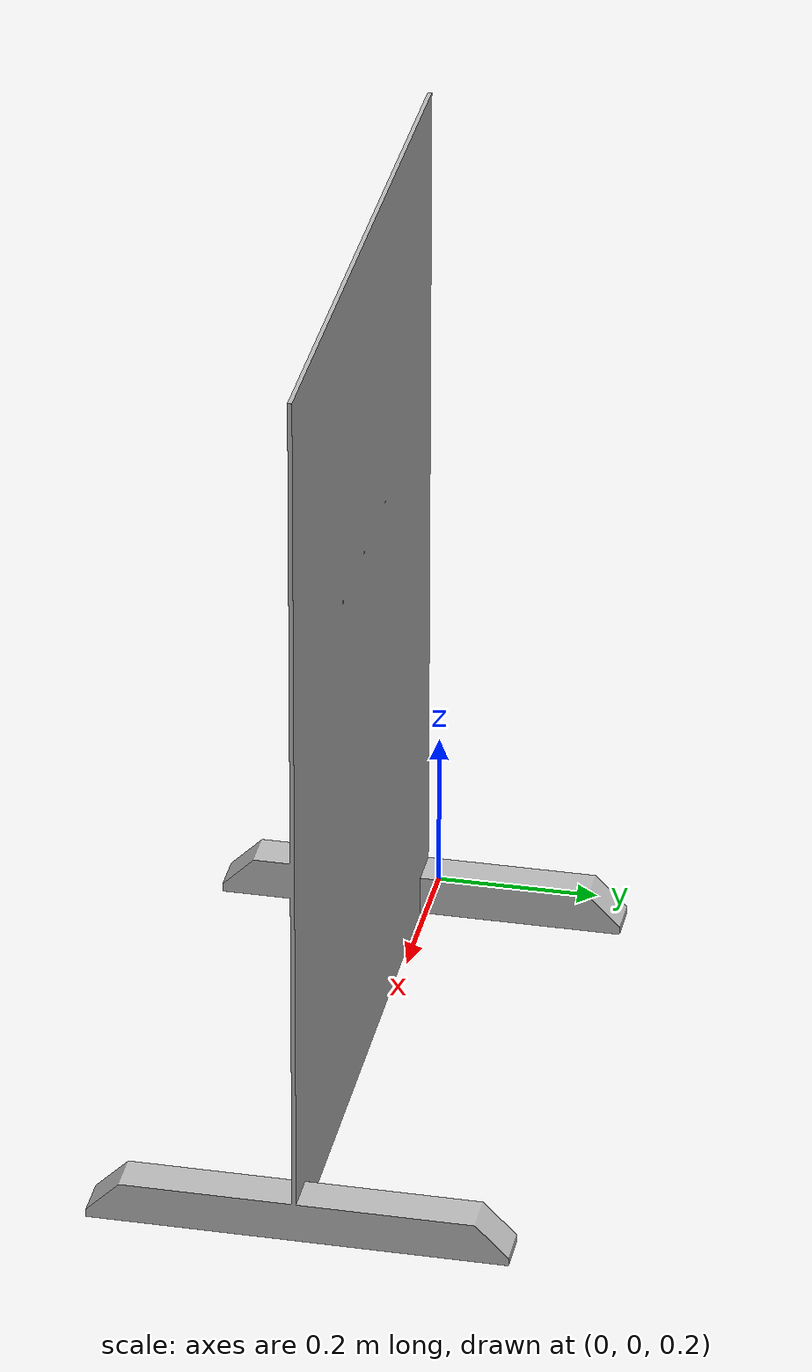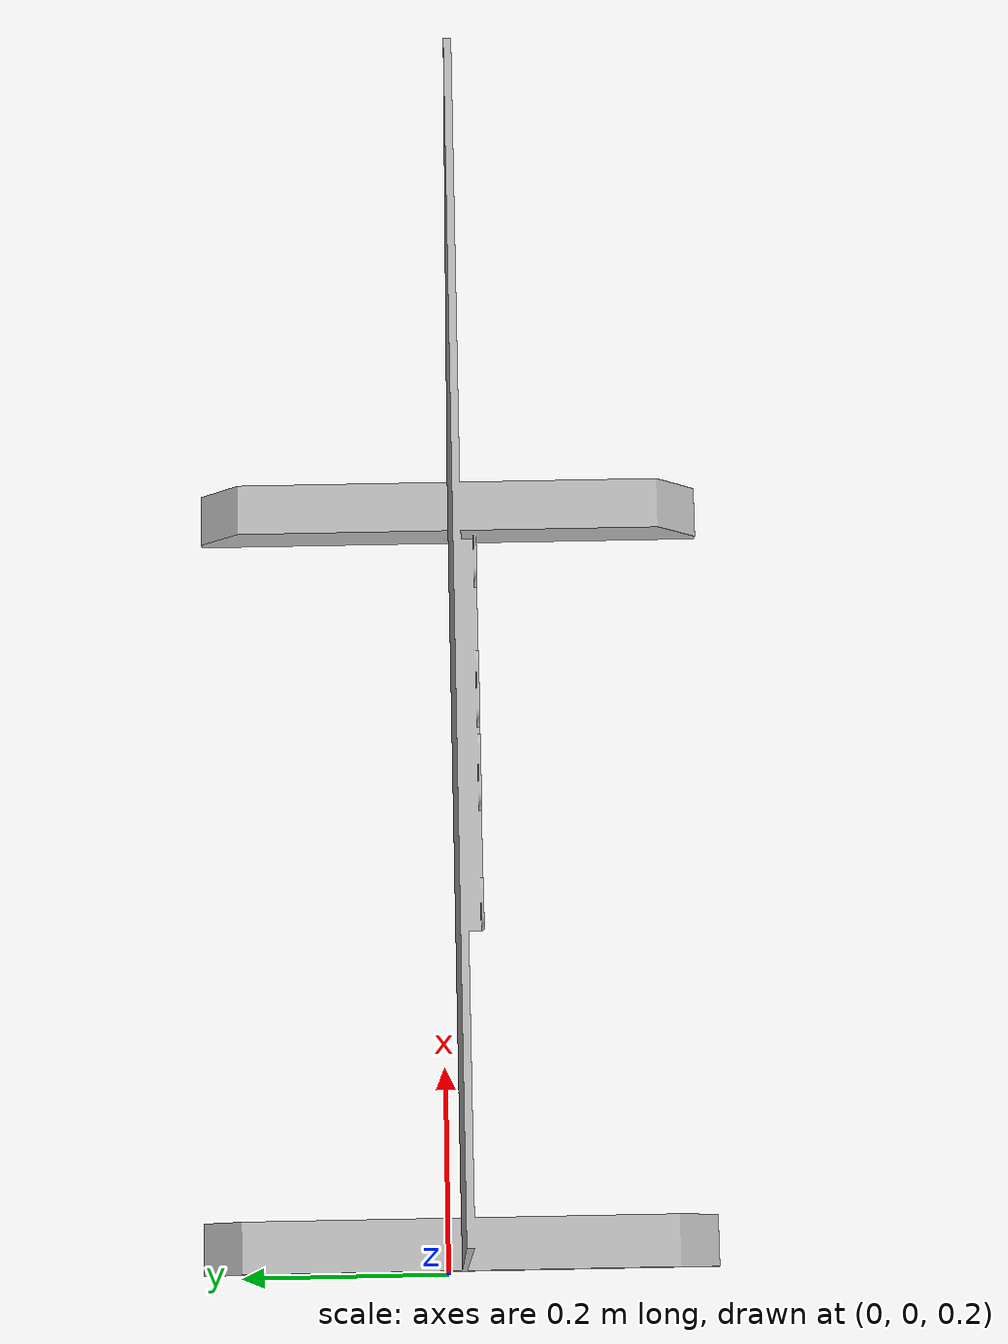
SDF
<?xml version='1.0'?>
<sdf version='1.6'>
  <model name='bin_hanger_v1'>
    <link name='bin_hanger'>
      <collision name="collision">
        <geometry>
          <mesh>
	    <scale>0.001 0.001 0.001</scale>
            <uri>model://bin_hanger/meshes/Bin_hanger2.dae</uri>
          </mesh>
        </geometry>
      </collision>
      <visual name="visual">
        <geometry>
          <mesh>
	    <scale>0.001 0.001 0.001</scale>
            <uri>model://bin_hanger/meshes/Bin_hanger2.dae</uri>
          </mesh>
        </geometry>
        <material name="">
        <color rgba="0.75294 0.75294 0.75294 1" />
      </material>
      </visual>
    </link>
    <static>1</static>
  </model>
</sdf>
